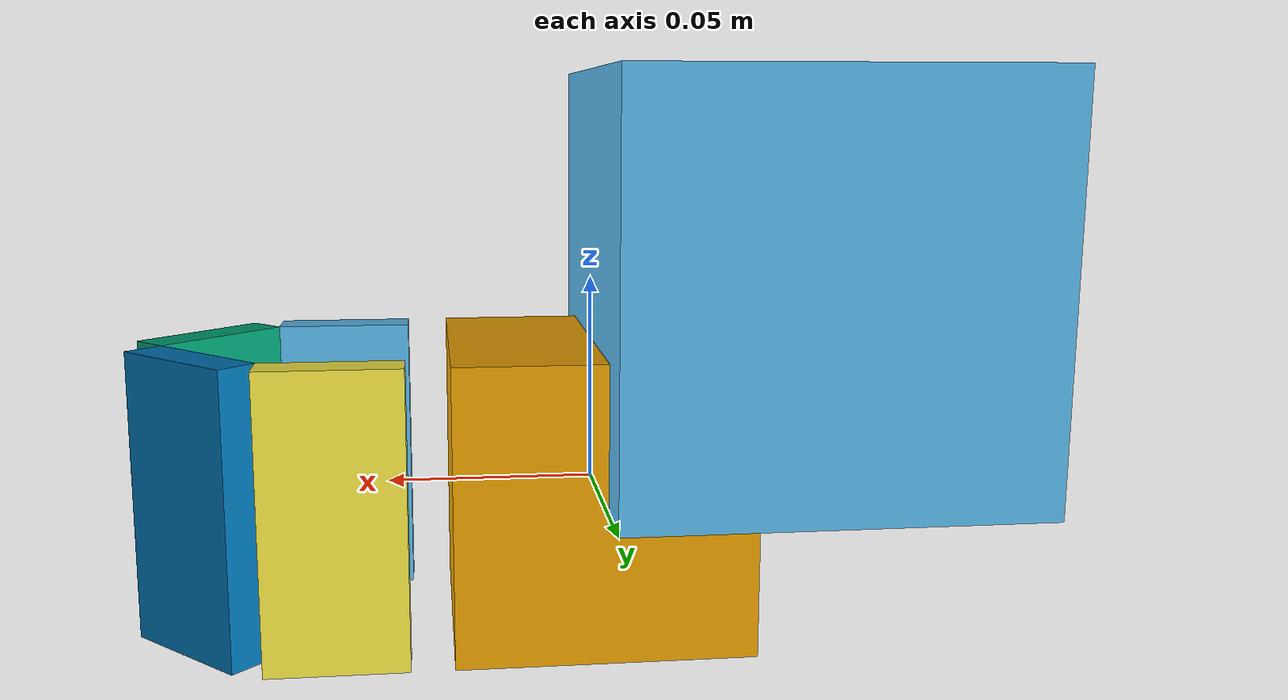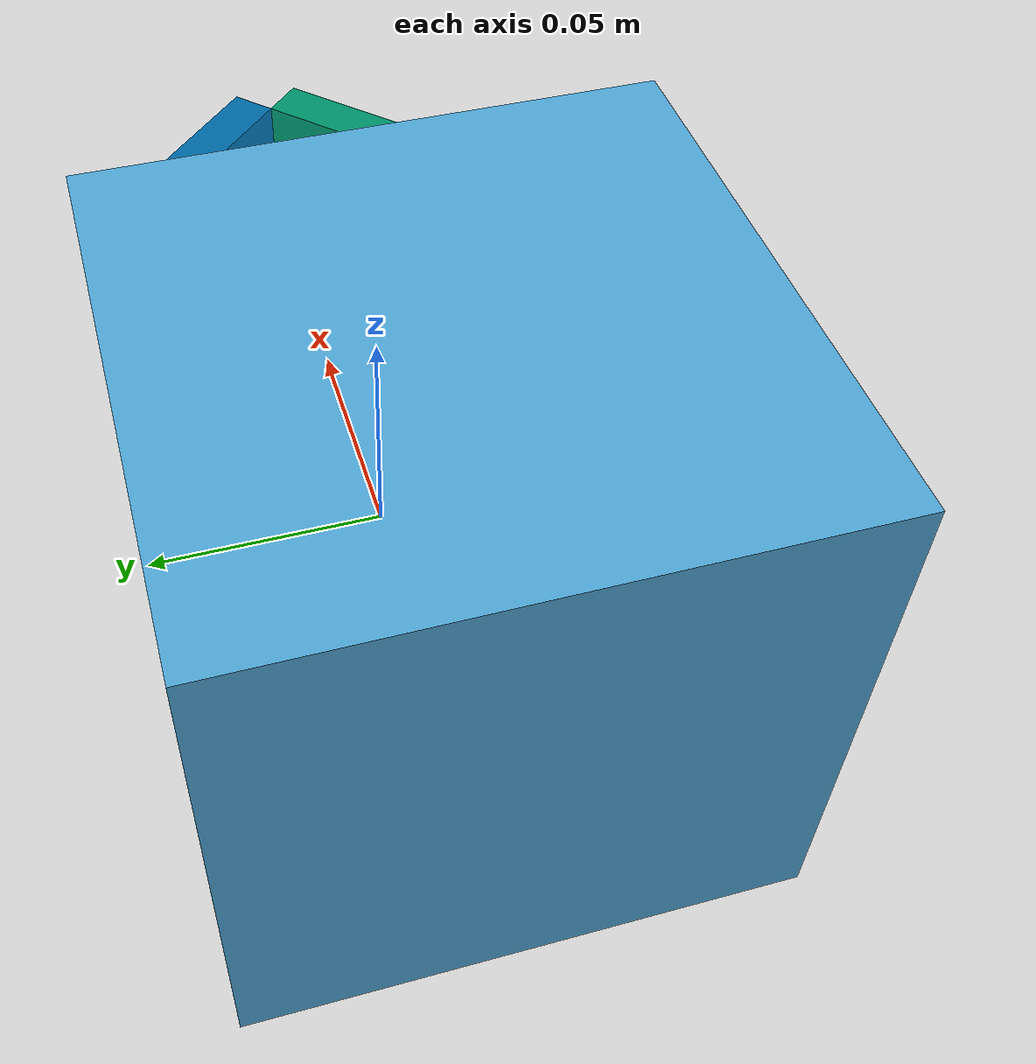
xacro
<?xml version="1.0"?>
<robot name="six_dof_hand"
	xmlns:xacro="http://ros.org/wiki/xacro">
	<xacro:include filename="$(find six_dof_hand_description)/urdf/camera/camera.xacro"/>
	<xacro:include filename="$(find six_dof_hand_description)/urdf/base/base.xacro"/>
	<xacro:include filename="$(find six_dof_hand_description)/urdf/linear_actuator/linear_actuator.xacro"/>
	<xacro:include filename="$(find six_dof_hand_description)/urdf/rotary_actuator/rotary_actuator.xacro"/>
	<xacro:include filename="$(find six_dof_hand_description)/urdf/finger/finger.xacro"/>
	<xacro:property name="M_PI" value="3.1415926535897931" />

<!-- =============== Link & Joint =============== -->
	<link name="world"/>

	<xacro:base parent="world">
		<origin xyz="0 0 0" rpy="0 0 0"/>
	</xacro:base>
	<xacro:linear_actuator prefix="x" parent="base_link">
		<origin xyz="0 0 0" rpy="0 0 0"/>
		<axis xyz="1 0 0"/>
	</xacro:linear_actuator>

	<xacro:linear_actuator prefix="y" parent="x_linear_actuator_link">
		<origin xyz="0 0 0" rpy="0 0 0"/>
		<axis xyz="0 1 0"/>
	</xacro:linear_actuator>

	<xacro:linear_actuator prefix="z" parent="y_linear_actuator_link">
		<origin xyz="0 0 0" rpy="0 0 0"/>
		<axis xyz="0 0 1"/>
	</xacro:linear_actuator>

	<xacro:rotary_actuator prefix="x" parent="z_linear_actuator_link">
		<origin xyz="0 0 0" rpy="0 0 0"/>
		<axis xyz="1 0 0"/>
	</xacro:rotary_actuator>

	<xacro:rotary_actuator prefix="y" parent="x_rotary_actuator_link">
		<origin xyz="0 0 0" rpy="0 0 0"/>
		<axis xyz="0 1 0"/>
	</xacro:rotary_actuator>

	<xacro:rotary_actuator prefix="z" parent="y_rotary_actuator_link">
		<origin xyz="0 0 0" rpy="0 0 0"/>
		<axis xyz="0 0 1"/>
	</xacro:rotary_actuator>

	<xacro:camera_model parent="z_rotary_actuator_link">
		<origin xyz="0 0 0" rpy="0 0 0"/>
	</xacro:camera_model>

	<xacro:finger prefix="r" parent="camera_link">
		<origin xyz="0.050 -0.030 0" rpy="0 0 ${-M_PI / 2}"/>
		<axis xyz="0 0 1"/>
	</xacro:finger>

	<xacro:finger prefix="l" parent="camera_link">
		<origin xyz="0.050 0.030 0" rpy="0 ${M_PI} ${-M_PI / 2}"/>
		<axis xyz="0 0 1"/>
	</xacro:finger>

<!-- ===============  Transmission =============== -->
<xacro:linear_actuator_trans prefix="x" interface="hardware_interface/EffortJointInterface"/>
<xacro:linear_actuator_trans prefix="y" interface="hardware_interface/EffortJointInterface"/>
<xacro:linear_actuator_trans prefix="z" interface="hardware_interface/EffortJointInterface"/>
<xacro:rotary_actuator_trans prefix="x" interface="hardware_interface/EffortJointInterface"/>
<xacro:rotary_actuator_trans prefix="y" interface="hardware_interface/EffortJointInterface"/>
<xacro:rotary_actuator_trans prefix="z" interface="hardware_interface/EffortJointInterface"/>
<xacro:finger_trans prefix="r" interface="hardware_interface/EffortJointInterface"/>
<xacro:finger_trans prefix="l" interface="hardware_interface/EffortJointInterface"/>

<!-- =============== Gazebo =============== -->
<gazebo>
	<plugin name="gazebo_ros_control" filename="libgazebo_ros_control.so">
		<robotNamespace>six_dof_hand</robotNamespace>
	</plugin>
</gazebo>

<!-- base -->
<xacro:base_gazebo/>

<!-- camera -->
<xacro:camera_gazebo/>

<!-- actuators -->
<xacro:rotary_actuator_gazebo prefix="x"/>
<xacro:rotary_actuator_gazebo prefix="y"/>
<xacro:rotary_actuator_gazebo prefix="z"/>
<xacro:linear_actuator_gazebo prefix="x"/>
<xacro:linear_actuator_gazebo prefix="y"/>
<xacro:linear_actuator_gazebo prefix="z"/>
<xacro:finger_gazebo prefix="r"/>
<xacro:finger_gazebo prefix="l"/>
</robot>

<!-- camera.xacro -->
<robot xmlns:xacro="http://ros.org/wiki/xacro">
	<xacro:include filename="$(find six_dof_hand_description)/urdf/camera/camera.gazebo.xacro"/>
	<xacro:macro name="camera_model" params="parent *joint_origin">
		<joint name="camera_joint" type="fixed">
			<xacro:insert_block name="joint_origin"/>
			<parent link="${parent}"/>
			<child link="camera_link"/>
		</joint>

		<link name="camera_link">
			<visual>
				<geometry>
					<box size="0.07 0.07 0.07"/>
				</geometry>
			</visual>
			<collision>
				<geometry>
					<box size="0.07 0.07 0.07"/>
				</geometry>
			</collision>
			<inertial>
				<origin xyz="0 0 0" rpy="0 0 0"/>
				<mass value="0.01"/>
				<inertia ixx="0.01" ixy="0.0" iyy="0.01" ixz="0.0" iyz="0.0" izz="0.01"/>
			</inertial>
		</link>
	</xacro:macro>
</robot>

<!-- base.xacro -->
<robot xmlns:xacro="http://ros.org/wiki/xacro">
	<xacro:include filename="$(find six_dof_hand_description)/urdf/base/base.gazebo.xacro"/>
	<xacro:macro name="base" params="parent *joint_origin">
		<joint name="base_joint" type="fixed">
			<xacro:insert_block name="joint_origin"/>
			<parent link="${parent}"/>
			<child link="base_link"/>
		</joint>

		<link name="base_link">
			<visual>
				<geometry>
					<box size="0.1 0.1 0.1"/>
				</geometry>
				<origin rpy="0 0 0" xyz="-0.05 0 0.05"/>
			</visual>
			<collision>
				<geometry>
					<box size="0.1 0.1 0.1"/>
				</geometry>
				<origin rpy="0 0 0" xyz="-0.05 0 0.05"/>
			</collision>
			<inertial>
				<origin xyz="0 0 0" rpy="0 0 0"/>
				<mass value="1.0"/>
				<inertia ixx="1.0" ixy="0.0" iyy="1.0" ixz="0.0" iyz="0.0" izz="1.0"/>
			</inertial>
		</link>
	</xacro:macro>
</robot>

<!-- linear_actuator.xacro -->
<robot xmlns:xacro="http://ros.org/wiki/xacro">
	<xacro:include filename="$(find six_dof_hand_description)/urdf/linear_actuator/linear_actuator.gazebo.xacro"/>
	<xacro:include filename="$(find six_dof_hand_description)/urdf/linear_actuator/linear_actuator.transmission.xacro"/>
	<xacro:property name="M_PI" value="3.1415926535897931" />
	<xacro:property name="velocity_scale_factor" value="1.0"/>
	<xacro:macro name="linear_actuator" params="prefix parent *joint_origin *joint_axis">
		<joint name="${prefix}_linear_actuator_joint" type="prismatic">
			<xacro:insert_block name="joint_origin"/>
			<xacro:insert_block name="joint_axis"/>
			<parent link="${parent}"/>
			<child link="${prefix}_linear_actuator_link"/>
			<limit lower="-3" upper="3" effort="1000.0" velocity="100.0"/>
		</joint>

		<link name="${prefix}_linear_actuator_link">
			<inertial>
				<origin xyz="0 0 0"/>
				<mass value="1.0"/>
				<inertia ixx="1.0" ixy="0.0" iyy="1.0" ixz="0.0" iyz="0.0" izz="1.0"/>
			</inertial>
		</link>
	</xacro:macro>
</robot>

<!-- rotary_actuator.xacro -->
<robot xmlns:xacro="http://ros.org/wiki/xacro">
	<xacro:include filename="$(find six_dof_hand_description)/urdf/rotary_actuator/rotary_actuator.gazebo.xacro"/>
	<xacro:include filename="$(find six_dof_hand_description)/urdf/rotary_actuator/rotary_actuator.transmission.xacro"/>
	<xacro:property name="M_PI" value="3.1415926535897931" />
	<xacro:property name="velocity_scale_factor" value="1.0"/>
	<xacro:macro name="rotary_actuator" params="prefix parent *joint_origin *joint_axis">
		<joint name="${prefix}_rotary_actuator_joint" type="revolute">
			<xacro:insert_block name="joint_origin"/>
			<xacro:insert_block name="joint_axis"/>
			<parent link="${parent}"/>
			<child link="${prefix}_rotary_actuator_link"/>
			<limit lower="-3.14" upper="3.14" effort="1000.0" velocity="100.0"/>
		</joint>

		<link name="${prefix}_rotary_actuator_link">
			<inertial>
				<origin xyz="0 0 0"/>
				<mass value="1.0"/>
				<inertia ixx="1.0" ixy="0.0" iyy="1.0" ixz="0.0" iyz="0.0" izz="1.0"/>
			</inertial>
		</link>
	</xacro:macro>
</robot>

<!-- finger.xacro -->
<robot xmlns:xacro="http://ros.org/wiki/xacro">
	<xacro:include filename="$(find six_dof_hand_description)/urdf/finger/finger.gazebo.xacro"/>
	<xacro:include filename="$(find six_dof_hand_description)/urdf/finger/finger.transmission.xacro"/>
	<xacro:property name="M_PI" value="3.1415926535897931" />
	<xacro:property name="velocity_scale_factor" value="1.0"/>
	<xacro:macro name="finger" params="prefix parent *joint_origin *joint_axis">
		<joint name="${prefix}_finger_joint" type="revolute">
			<xacro:insert_block name="joint_origin"/>
			<xacro:insert_block name="joint_axis"/>
			<parent link="${parent}"/>
			<child link="${prefix}_finger_link"/>
			<limit lower="-1" upper="0" effort="1000.0" velocity="100.0"/>
		</joint>

		<link name="${prefix}_finger_link">
			<pose>0 0.0115 0 0 0 0</pose>
			<inertial>
				<origin xyz="0 0 0"/>
				<mass value="0.01"/>
				<inertia ixx="0.01" ixy="0.0" iyy="0.01" ixz="0.0" iyz="0.0" izz="0.01"/>
			</inertial>
			<collision name="collision">
				<geometry>
					<box size="0.01 0.033 0.07"/>
				</geometry>
				<origin rpy="0 0 0" xyz="0 0.0115 0"/>
			</collision>
			<visual name="visual">
				<geometry>
					<box size="0.01 0.033 0.07"/>
				</geometry>
				<origin rpy="0 0 0" xyz="0 0.0115 0"/>
			</visual>
		</link>

		<joint name="${prefix}_finger_tip_joint" type="fixed">
			<parent link="${prefix}_finger_link"/>
			<child link="${prefix}_finger_tip_link"/>
			<limit lower="-3.14" upper="3.14" effort="1000.0" velocity="100.0"/>
			<origin rpy="0 0 0" xyz="-0.013964 0.044036 0"/>
			<axis xyz="0 0 1"/>
		</joint>

		<link name="${prefix}_finger_tip_link">
			<pose>0 0 0 0 0 0</pose>
			<inertial>
				<origin xyz="0 0 0"/>
				<mass value="0.01"/>
				<inertia ixx="0.01" ixy="0.0" iyy="0.01" ixz="0.0" iyz="0.0" izz="0.01"/>
			</inertial>
			<collision name="collision">
				<geometry>
					<box size="0.01 0.035355 0.07"/>
				</geometry>
				<origin rpy="0 0 ${M_PI/4}" xyz="0 0 0"/>
			</collision>
			<visual name="visual">
				<geometry>
					<box size="0.01 0.035355 0.07"/>
				</geometry>
				<origin rpy="0 0 ${M_PI/4}" xyz="0 0 0"/>
			</visual>
		</link>
	</xacro:macro>
</robot>
